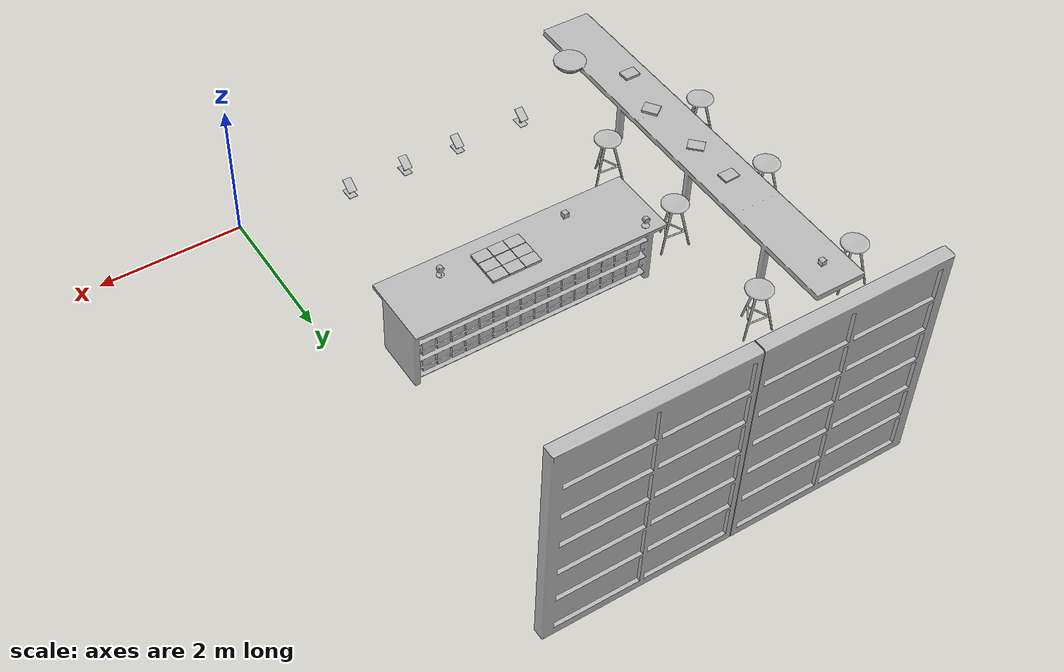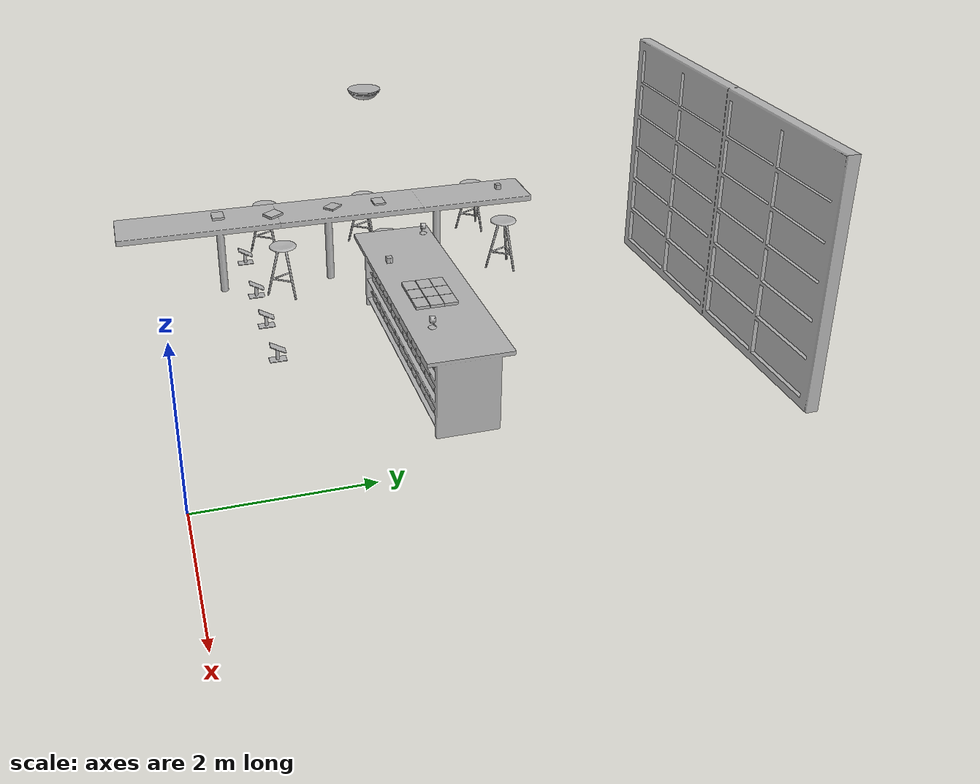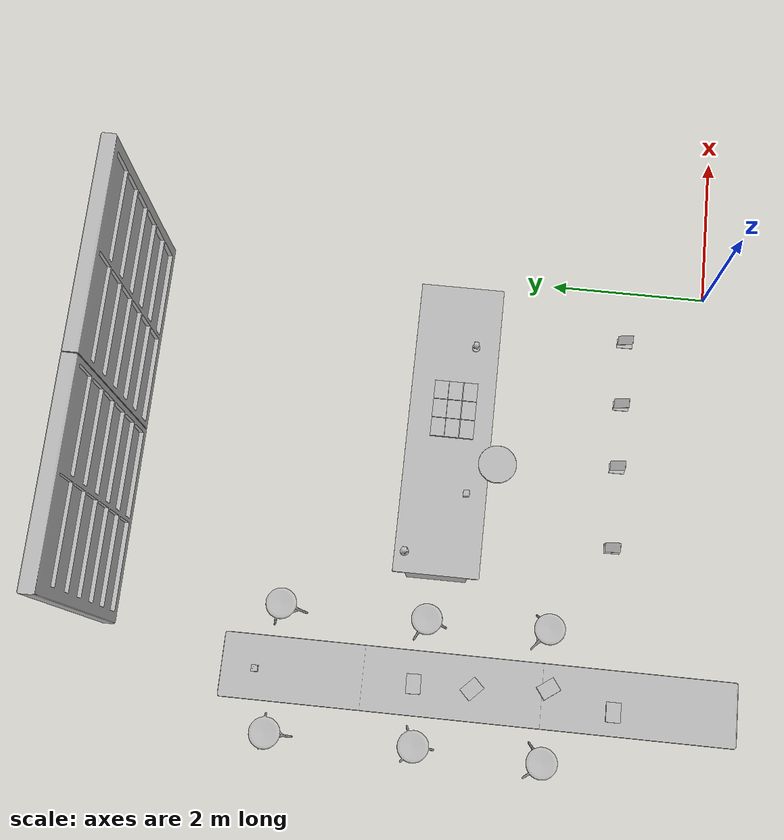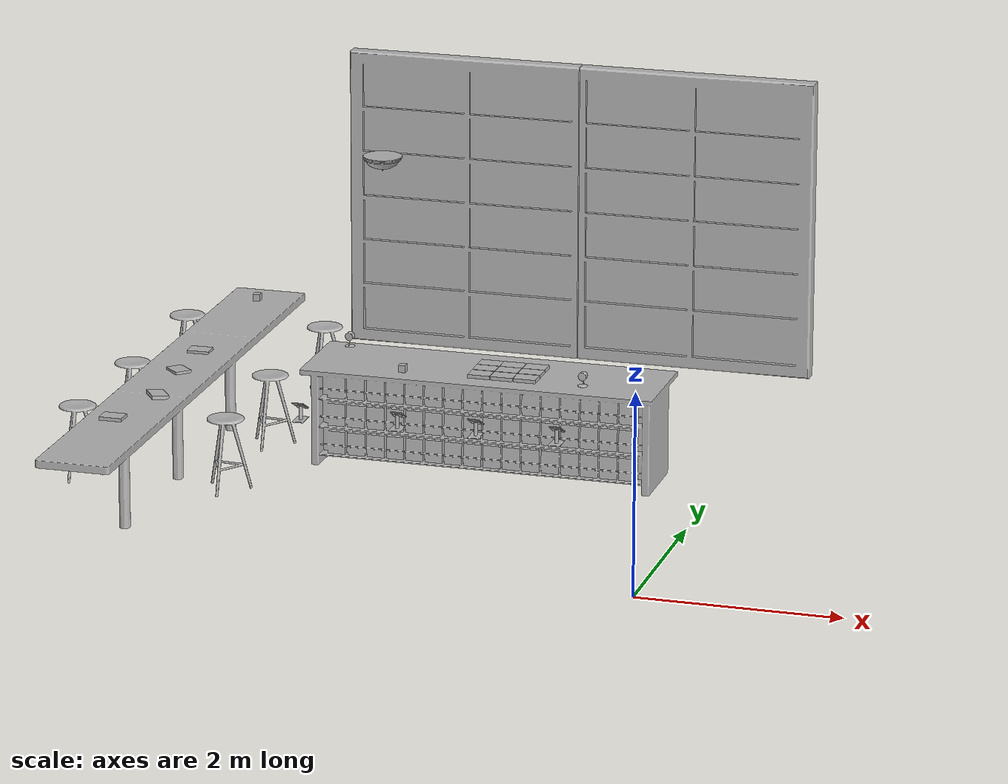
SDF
<sdf version="1.6">
 <world name="default">
  <model name="BookE_01_002">
   <include><uri>model://aws_robomaker_retail_BookE_01</uri></include>
   <pose>-5.414000 3.330672 0.934015 -0.000001 -0.000001 -1.541094</pose>
  </model>
  <model name="BookE_01_006">
   <include><uri>model://aws_robomaker_retail_BookE_01</uri></include>
   <pose>-1.889425 3.346395 1.054941 0 0 1.568157</pose>
  </model>
  <model name="BookE_01_007">
   <include><uri>model://aws_robomaker_retail_BookE_01</uri></include>
   <pose>-2.123726 3.346395 1.054941 0 0 1.568157</pose>
  </model>
  <model name="BookE_01_008">
   <include><uri>model://aws_robomaker_retail_BookE_01</uri></include>
   <pose>-5.315121 1.771952 0.955242 3.141243 -0.072268 -2.526906</pose>
  </model>
  <model name="BookE_01_010">
   <include><uri>model://aws_robomaker_retail_BookE_01</uri></include>
   <pose>-5.503415 1.012063 0.941463 0 0 -1.568440</pose>
  </model>
  <model name="BookE_01_013">
   <include><uri>model://aws_robomaker_retail_BookE_01</uri></include>
   <pose>-5.403906 2.650881 0.931119 0.021204 -0.000001 -2.355751</pose>
  </model>
  <model name="BookE_01_014">
   <include><uri>model://aws_robomaker_retail_BookE_01</uri></include>
   <pose>-1.889425 2.993687 1.054941 0 0 1.568157</pose>
  </model>
  <model name="BookE_01_015">
   <include><uri>model://aws_robomaker_retail_BookE_01</uri></include>
   <pose>-2.123726 2.993687 1.054941 0 0 1.568157</pose>
  </model>
  <model name="BookE_01_016">
   <include><uri>model://aws_robomaker_retail_BookE_01</uri></include>
   <pose>-2.357369 2.993687 1.054941 0 0 1.568157</pose>
  </model>
  <model name="BookE_01_017">
   <include><uri>model://aws_robomaker_retail_BookE_01</uri></include>
   <pose>-1.889425 3.172920 1.054941 0 0 1.568157</pose>
  </model>
  <model name="BookE_01_018">
   <include><uri>model://aws_robomaker_retail_BookE_01</uri></include>
   <pose>-2.123726 3.172920 1.054941 0 0 1.568157</pose>
  </model>
  <model name="BookE_01_019">
   <include><uri>model://aws_robomaker_retail_BookE_01</uri></include>
   <pose>-2.357369 3.172920 1.054941 0 0 1.568157</pose>
  </model>
  <model name="BookE_01_030">
   <include><uri>model://aws_robomaker_retail_BookE_01</uri></include>
   <pose>-2.357369 3.346395 1.054941 0 0 1.568157</pose>
  </model>
  <model name="ChairB_01_009">
   <include><uri>model://aws_robomaker_retail_ChairB_01</uri></include>
   <pose>-4.602947 5.021919 0.030259 -0.001073 -0.001935 0.001439</pose>
  </model>
  <model name="ChairB_01_010">
   <include><uri>model://aws_robomaker_retail_ChairB_01</uri></include>
   <pose>-6.109693 5.026245 0.027274 -0.001422 -0.002424 0.000176</pose>
  </model>
  <model name="ChairB_01_011">
   <include><uri>model://aws_robomaker_retail_ChairB_01</uri></include>
   <pose>-4.616166 3.276753 0.0321 -0.001068 -0.001938 0.000117</pose>
  </model>
  <model name="ChairB_01_012">
   <include><uri>model://aws_robomaker_retail_ChairB_01</uri></include>
   <pose>-6.090762 3.293415 0.029216 -0.001072 -0.001936 0.000119</pose>
  </model>
  <model name="ChairB_01_013">
   <include><uri>model://aws_robomaker_retail_ChairB_01</uri></include>
   <pose>-4.589604 1.815766 0.032459 0.001362 -0.001944 0.000145</pose>
  </model>
  <model name="ChairB_01_014">
   <include><uri>model://aws_robomaker_retail_ChairB_01</uri></include>
   <pose>-6.130103 1.798599 0.02944 0.001362 -0.001946 0.000105</pose>
  </model>
  <model name="SecurityCamera_01_001">
   <include><uri>model://aws_robomaker_retail_SecurityCamera_01</uri></include>
   <pose>-1.308807 2.973710 1.037756 -0.004006 -0.000097 -0.010660</pose>
  </model>
  <model name="SecurityCamera_01_002">
   <include><uri>model://aws_robomaker_retail_SecurityCamera_01</uri></include>
   <pose>-3.904507 3.590531 1.037756 0 0 3.050913</pose>
  </model>
  <model name="DeskB_01_002">
   <include><uri>model://aws_robomaker_retail_DeskB_01</uri></include>
   <pose>-5.400709 2.580536 -0.181282 0 -0 0</pose>
  </model>
  <model name="DeskA_01_001">
   <include><uri>model://aws_robomaker_retail_DeskA_01</uri></include>
   <pose>-2.340694 3.200118 0.014921 0.000124 -0.000010 0.000376</pose>
  </model>
  <model name="DoorB_01_001">
   <include><uri>model://aws_robomaker_retail_DoorB_01</uri></include>
   <pose>-2.492457 7.219370 -0.035203 0 -0 0</pose>
  </model>
  <model name="Tablet_01_005">
   <include><uri>model://aws_robomaker_retail_Tablet_01</uri></include>
   <pose>-1.072680 1.163816 1.177895 0.513308 -0.000001 3.110062</pose>
  </model>
  <model name="Tablet_01_006">
   <include><uri>model://aws_robomaker_retail_Tablet_01</uri></include>
   <pose>-1.876690 1.163816 1.177895 0.513308 -0.000001 3.110062</pose>
  </model>
  <model name="Tablet_01_007">
   <include><uri>model://aws_robomaker_retail_Tablet_01</uri></include>
   <pose>-2.649670 1.163816 1.177895 0.513308 -0.000001 3.110062</pose>
  </model>
  <model name="Tablet_01_008">
   <include><uri>model://aws_robomaker_retail_Tablet_01</uri></include>
   <pose>-3.636550 1.163816 1.177895 0.513308 -0.000001 3.110062</pose>
  </model>
  <model name="Holder_01_009">
   <include><uri>model://aws_robomaker_retail_Holder_01</uri></include>
   <pose>-1.072932 1.160829 1.037756 0 -0 -3.130149</pose>
  </model>
  <model name="Holder_01_010">
   <include><uri>model://aws_robomaker_retail_Holder_01</uri></include>
   <pose>-1.874890 1.160829 1.037756 0 -0 -3.130149</pose>
  </model>
  <model name="Holder_01_011">
   <include><uri>model://aws_robomaker_retail_Holder_01</uri></include>
   <pose>-2.659160 1.160829 1.037756 0 -0 -3.130149</pose>
  </model>
  <model name="Holder_01_012">
   <include><uri>model://aws_robomaker_retail_Holder_01</uri></include>
   <pose>-3.631300 1.160829 1.037756 0 -0 -3.130149</pose>
  </model>
  <model name="LightA_01_005">
   <include><uri>model://aws_robomaker_retail_LightA_01</uri></include>
   <pose>-3.271001 2.685925 3.150328 0 -0 0</pose>
  </model>
  <model name="MagicCube_01_002">
   <include><uri>model://aws_robomaker_retail_MagicCube_01</uri></include>
   <pose>-5.383672 5.177522 0.968608 1.564128 -0.000001 -1.555410</pose>
  </model>
  <model name="MagicCube_01_003">
   <include><uri>model://aws_robomaker_retail_MagicCube_01</uri></include>
   <pose>-3.146512 2.928458 1.035654 0 0 0</pose>
  </model>
 </world>
</sdf>
